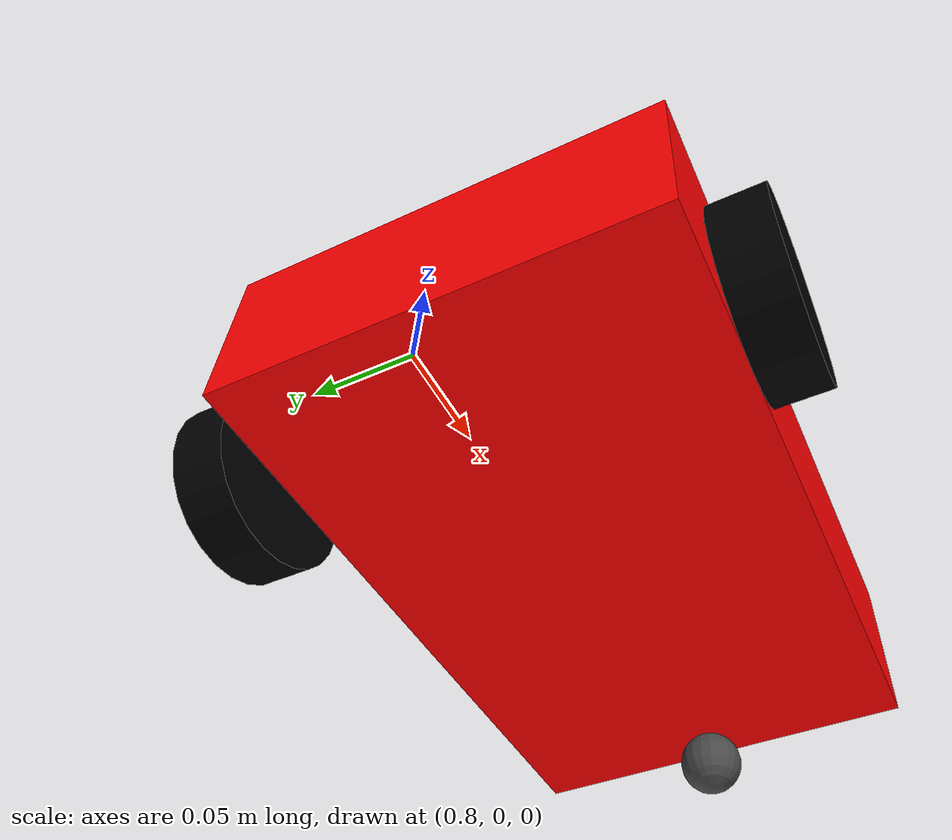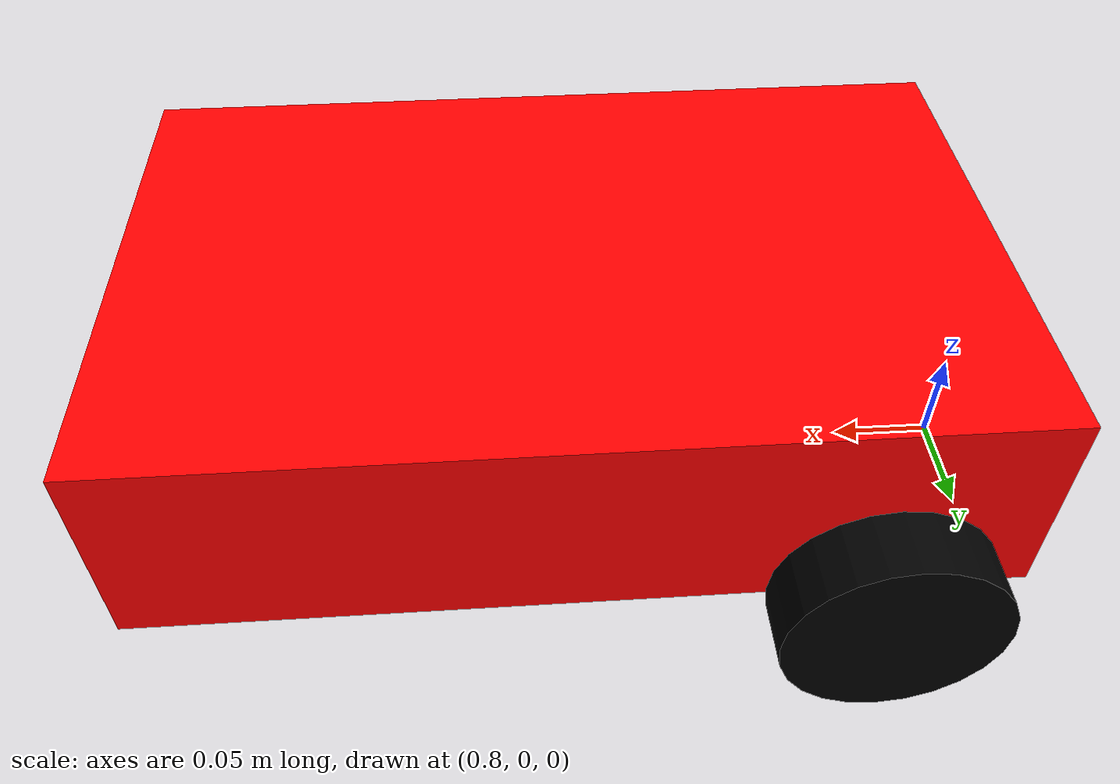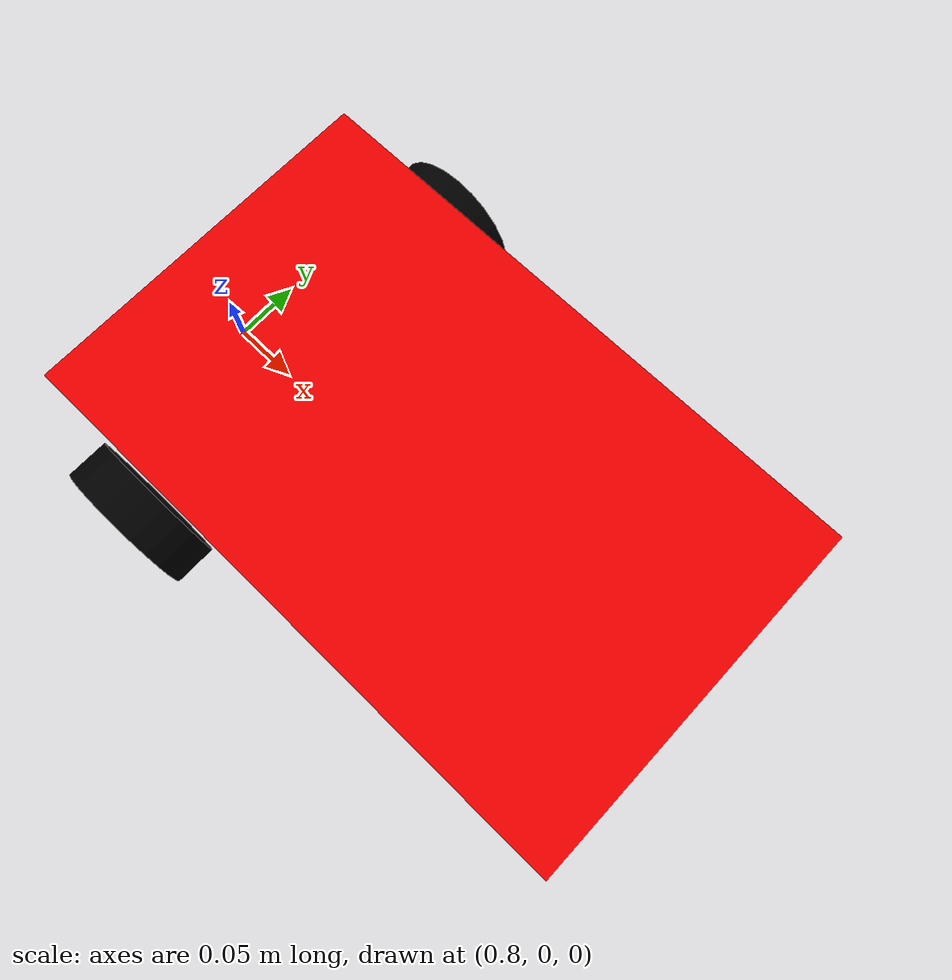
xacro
<?xml version="1.0"?>
<robot xmlns:xacro="http://www.ros.org/wiki/xacro"  name="robot">

    <!-- Include other xacro files here -->
    <xacro:include filename="materials.xacro" />
    <xacro:include filename="inertial_calculations.xacro" />
    <xacro:include filename="diffdrivebot_params.xacro" />

    <!-- Empty link for the map origin -->
    <link name="map"></link>

    <!-- Position of the base link with respect to the map -->
    <joint name="base_joint" type="fixed">
        <origin xyz="1 0 ${base_height/2+wheel_r-wheel_z_from_base}" rpy="0 0 0"/>
        <parent link="map"/>
        <child link="base_link"/>
    </joint>

    <link name="base_link">
        <visual>
            <origin xyz="0 0 0" rpy="0 0 0"/>
            <geometry>
                <box size="${base_width} ${base_depth} ${base_height}"/>
            </geometry>
            <material name="red" />
        </visual>
        <collision>
            <origin xyz="0 0 0" rpy="0 0 0"/>
            <geometry>
                <box size="${base_width} ${base_depth} ${base_height}"/>
            </geometry>
        </collision>
        <xacro:inertial_box mass="${base_mass}" x="${base_width}" y="${base_depth}" z="${base_height}">
            <origin xyz="0 0 0" rpy="0 0 0"/>
        </xacro:inertial_box>
    </link>

    <joint name="wheel_l_joint" type="continuous">
        <origin xyz="-${base_width/2 - wheel_x_from_back - wheel_r} ${base_depth/2+0.005} -${base_height/2 - wheel_z_from_base}" rpy="-${pi/2} 0 0"/>
        <parent link="base_link"/>
        <child link="wheel_l_link"/>
        <axis xyz="0 0 1"/>
    </joint>

    <link name="wheel_l_link">
        <visual>
            <origin xyz="0 0 ${wheel_height/2}" rpy="0 0 0"/>
            <geometry>
                <cylinder radius="${wheel_r}" length="${wheel_height}"/>
            </geometry>
            <material name="black" />
        </visual>
        <collision>
            <origin xyz="0 0 ${wheel_height/2}" rpy="0 0 0"/>
            <geometry>
                <cylinder radius="${wheel_r}" length="${wheel_height}"/>
            </geometry>
        </collision>
        <xacro:inertial_cylinder mass="${wheel_mass}" r="${wheel_r}" h="${wheel_height}">
            <origin xyz="0 0 0" rpy="0 0 0"/>
        </xacro:inertial_cylinder>
    </link>

    <joint name="wheel_r_joint" type="continuous">
        <origin xyz="-${base_width/2 - wheel_x_from_back - wheel_r} -${base_depth/2+wheel_height+0.005} -${base_height/2 - wheel_z_from_base}" rpy="-${pi/2} 0 0"/>
        <parent link="base_link"/>
        <child link="wheel_r_link"/>
        <axis xyz="0 0 1"/>
    </joint>

    <link name="wheel_r_link">
        <visual>
            <origin xyz="0 0 ${wheel_height/2}" rpy="0 0 0"/>
            <geometry>
                <cylinder radius="${wheel_r}" length="${wheel_height}"/>
            </geometry>
            <material name="black" />
        </visual>
        <collision>
            <origin xyz="0 0 ${wheel_height/2}" rpy="0 0 0"/>
            <geometry>
                <cylinder radius="${wheel_r}" length="${wheel_height}"/>
            </geometry>
        </collision>
        <xacro:inertial_cylinder mass="${wheel_mass}" r="${wheel_r}" h="${wheel_height}">
            <origin xyz="0 0 0" rpy="0 0 0"/>
        </xacro:inertial_cylinder>
    </link>

    <joint name="caster_joint" type="fixed">
        <origin xyz="${base_width/2 - caster_r} 0 -${base_height/2 + caster_r}" rpy="0 0 0"/>
        <parent link="base_link"/>
        <child link="caster_link"/>
    </joint>

    <link name="caster_link">
        <visual>
            <origin xyz="0 0 0" rpy="0 0 0"/>
            <geometry>
                <sphere radius="${caster_r}"/>
            </geometry>
            <material name="gray" />
        </visual>
        <collision>
            <origin xyz="0 0 0" rpy="0 0 0"/>
            <geometry>
                <sphere radius="${caster_r}"/>
            </geometry>
        </collision>
        <xacro:inertial_sphere mass="${caster_mass}" r="${wheel_r}">
            <origin xyz="0 0 0" rpy="0 0 0"/>
        </xacro:inertial_sphere>
    </link>
</robot>

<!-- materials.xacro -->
<robot xmlns:xacro="http://www.ros.org/wiki/xacro" >

    <material name="black">
        <color rgba="0 0 0 1"/>
    </material>

    <material name="gray">
        <color rgba="0.3 0.3 0.3 1"/>
    </material>

    <material name="red">
        <color rgba="1 0 0 1"/>
    </material>
</robot>

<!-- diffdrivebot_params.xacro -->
<robot xmlns:xacro="http://www.ros.org/wiki/xacro" >
    <xacro:property name="base_width" value="0.4" />
    <xacro:property name="base_depth" value="0.25" />
    <xacro:property name="base_height" value="0.1" />
    <xacro:property name="base_mass" value="3" />

    <xacro:property name="wheel_r" value="0.05" />
    <xacro:property name="wheel_height" value="0.03" />
    <xacro:property name="wheel_mass" value="0.1" />
    <xacro:property name="wheel_z_from_base" value="0.01" />
    <xacro:property name="wheel_x_from_back" value="0.02" />

    <xacro:property name="caster_r" value="0.02" />
    <xacro:property name="caster_mass" value="0.05" />
</robot>
